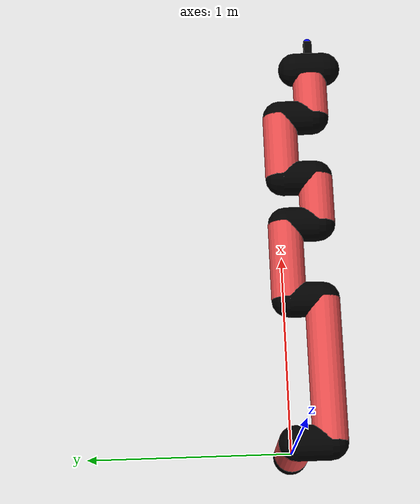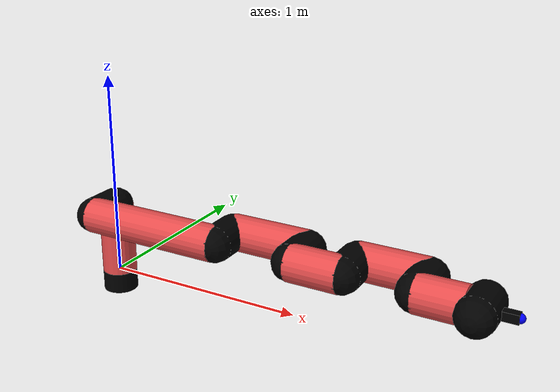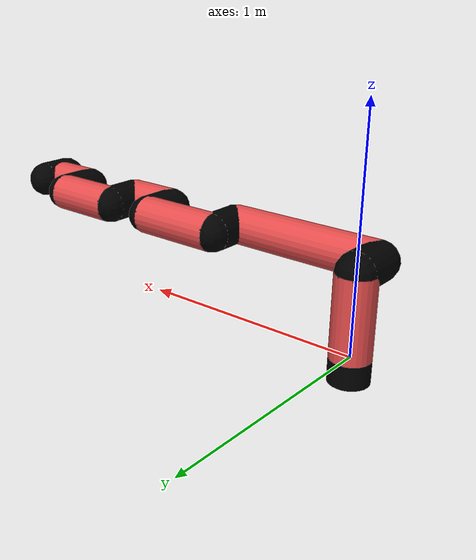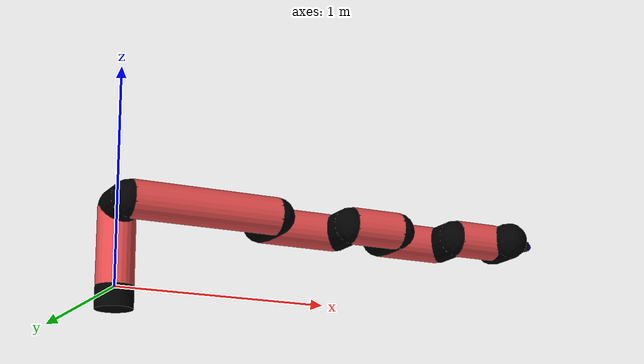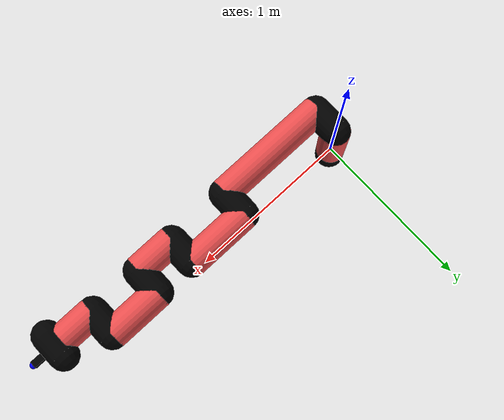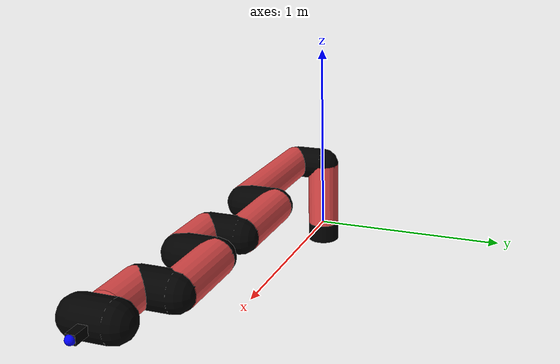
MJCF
<mujoco model="manipulator">
		<compiler angle="degree" coordinate="local" inertiafromgeom="auto" meshdir="meshes/"/>
		<option gravity="0 0 0" integrator="RK4" iterations="30" timestep="0.01"/>

		<default>
		<joint armature="1" limited="true" stiffness="10" damping="15" frictionloss="5.0"/>
		<geom conaffinity="1" condim="3" contype="1" friction=".5 .1 .1" margin="0.002"/>
		<motor ctrllimited="true"/>
		<position ctrllimited="true"/>
		</default>

		<asset>
		<texture builtin="gradient" height="100" rgb1="1.0 1.0 1.0" rgb2="1.0 1.0 1.0" type="skybox" width="100"/>
		<texture builtin="flat" height="32" name="arm_tex" rgb1="0.9 0.3 0.3" type="2d" width="32"/>
		<texture builtin="flat" height="32" name="gripper_tex" rgb1="0.0 0.0 0.0" type="cube" width="32"/>

		<material name="arm_mat" shininess="0.1" specular="0.1" texture="arm_tex"/>
		<material name="gripper_mat" shininess="1" specular="1" texture="gripper_tex"/>
		</asset>

		<worldbody>
		<light cutoff="45" diffuse=".8 .8 .8" dir="0 0.16 -1" directional="false" name="light" pos="0 -2.0 8.0" specular="0.3 0.3 0.3"/>

		<body name="base_link" pos="0 0 -0.1">
		<geom fromto="0 0 0 0 0 0.1" material="arm_mat" name="base_link" rgba="0.0 0.0 0.0 1" size="0.085" type="cylinder"/>
		</body>

		<body name="l1" pos="0 0 0">
<geom fromto="0 0 0 0 0 0.35" material="arm_mat" name="l1" rgba="0.9 0.3 0.3 1" size="0.085" type="cylinder"/>
<geom fromto="0 0 0.35 0 -0.16 0.35" material="arm_mat" name="l1_ex" rgba="0.0 0.0 0.0 1" size="0.085" type="capsule"/>
<joint axis="0 0 1" name="j1" pos="0 0 0" range="-90 90" damping="34.03" frictionloss="8.02"/>

<body name="l2" pos="0 -0.16 0.35">
<geom fromto="0 0 0 0.69 0 0" material="arm_mat" name="l2" rgba="0.9 0.3 0.3 1" size="0.085" type="cylinder"/>
<geom fromto="0.69 0 0 0.69 0.16 0" material="arm_mat" name="l2_ex" rgba="0.0 0.0 0.0 1" size="0.085" type="capsule"/>
<joint axis="0.0 1.0 0.0" name="j2" pos="0 0 0" range="-90 60" damping="37.4" frictionloss="10.39"/>

<body name="l3" pos="0.69 0.16 0">
<geom fromto="0 0 0 0.38 0 0" material="arm_mat" name="l3" rgba="0.9 0.3 0.3 1" size="0.085" type="cylinder"/>
<geom fromto="0.38 0 0 0.38 -0.16 0" material="arm_mat" name="l3_ex" rgba="0.0 0.0 0.0 1" size="0.085" type="capsule"/>
<joint axis="0.0 1.0 0.0" name="j3" pos="0 0 0" range="-30 60" damping="28.88" frictionloss="9.17"/>

<body name="l4" pos="0.38 -0.16 0">
<geom fromto="0 0 0 0.24 0 0" material="arm_mat" name="l4" rgba="0.9 0.3 0.3 1" size="0.085" type="cylinder"/>
<geom fromto="0.24 0 0 0.24 0.16 0" material="arm_mat" name="l4_ex" rgba="0.0 0.0 0.0 1" size="0.085" type="capsule"/>
<joint axis="0.0 1.0 0.0" name="j4" pos="0 0 0" range="-30 60" damping="18.59" frictionloss="11.17"/>

<body name="l5" pos="0.24 0.16 0">
<geom fromto="0 0 0 0.32 0 0" material="arm_mat" name="l5" rgba="0.9 0.3 0.3 1" size="0.085" type="cylinder"/>
<geom fromto="0.32 0 0 0.32 -0.16 0" material="arm_mat" name="l5_ex" rgba="0.0 0.0 0.0 1" size="0.085" type="capsule"/>
<joint axis="0.0 1.0 0.0" name="j5" pos="0 0 0" range="-30 60" damping="19.5" frictionloss="8.84"/>

<body name="l6" pos="0.32 -0.16 0">
<geom fromto="0 0 0 0.21 0 0" material="arm_mat" name="l6" rgba="0.9 0.3 0.3 1" size="0.085" type="cylinder"/>
<joint axis="0.0 1.0 0.0" name="j6" pos="0 0 0" range="-30 60" damping="24.22" frictionloss="12.63"/>

<body name="gripper" pos="0.21 0 0">
<geom fromto="0.05 -0.07 0 0.05 0.07 0" material="gripper_mat" name="gripper" rgba="0.0 0.0 0.0 1" size="0.085" type="capsule"/><joint axis="1 0 0" name="j7" pos="0 0 0" range="-90 90" damping="15" frictionloss="5.0"/><body name="finger" pos="0.1 0 0">
<geom fromto="0 0.0 0 0.1 0.0 0" material="gripper_mat" name="finger" rgba="0.0 0.0 0.0 1" size="0.020 0.06 0.06" type="box"/>
</body>
<site name="current" pos="0.2 0. 0.0" rgba="0. 0. 1.0 1" size="0.02" type="sphere"/>
</body>
</body>
</body>
</body>
</body>
</body>
</body>
</worldbody>
<actuator>
<motor ctrllimited="true" ctrlrange="-1.0 1.0" joint="j1" gear="52.12"/>
<motor ctrllimited="true" ctrlrange="-1.0 1.0" joint="j2" gear="82.65"/>
<motor ctrllimited="true" ctrlrange="-1.0 1.0" joint="j3" gear="69.67"/>
<motor ctrllimited="true" ctrlrange="-1.0 1.0" joint="j4" gear="74.67"/>
<motor ctrllimited="true" ctrlrange="-1.0 1.0" joint="j5" gear="56.85"/>
<motor ctrllimited="true" ctrlrange="-1.0 1.0" joint="j6" gear="73.46"/>
<motor ctrllimited="true" ctrlrange="-1.0 1.0" joint="j7" gear="80"/>
</actuator>
</mujoco>
